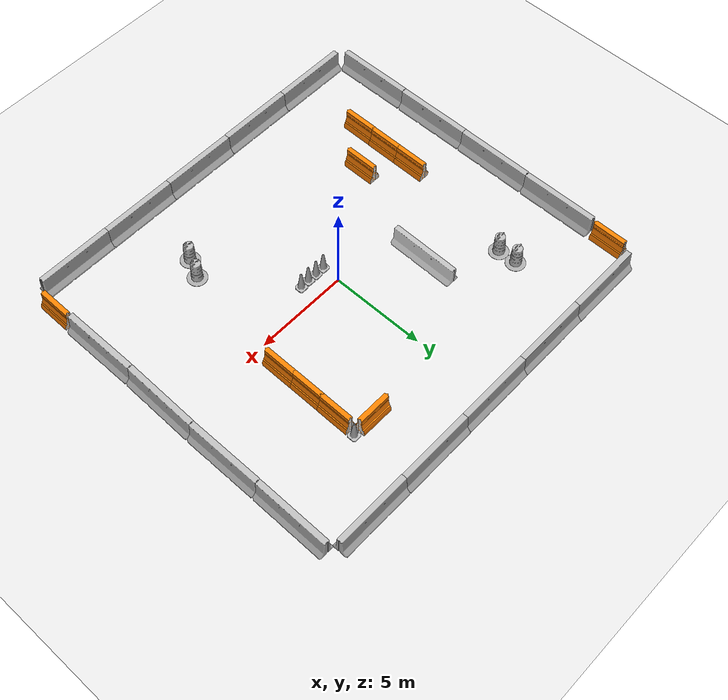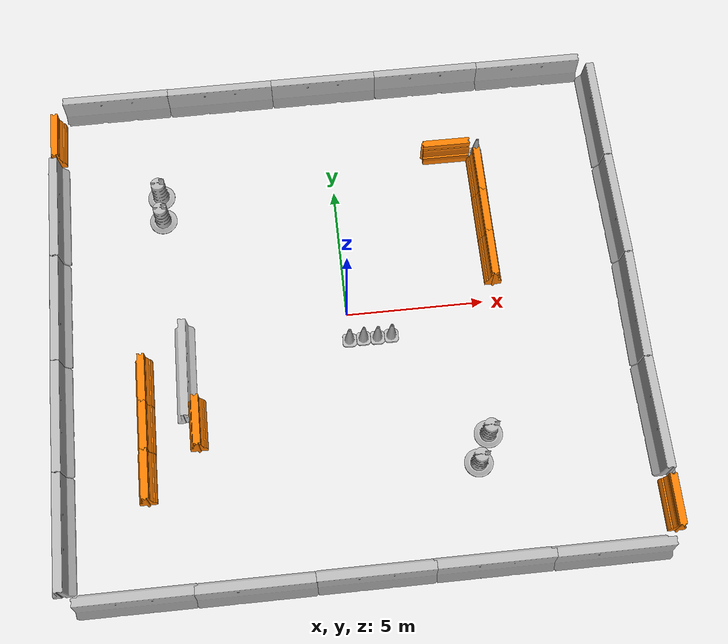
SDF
<sdf version="1.4">
 <world name="default">
  <light name="sun" type="directional">
   <pose>0 0 10 0 -0 0</pose>
   <diffuse>0.8 0.8 0.8 1</diffuse>
   <specular>0.2 0.2 0.2 1</specular>
   <attenuation>
    <range>1000</range>
    <constant>0.9</constant>
    <linear>0.01</linear>
    <quadratic>0.001</quadratic>
   </attenuation>
   <direction>-0.5 0.1 -0.9</direction>
  </light>
  <model name="ground_plane">
   <static>1</static>
   <link name="link">
    <collision name="collision">
     <geometry><plane><normal>0 0 1</normal><size>100 100</size></plane></geometry>
     <surface><friction><ode><mu>100</mu><mu2>50</mu2></ode></friction></surface>
    </collision>
    <visual name="visual">
     <cast_shadows>0</cast_shadows>
     <geometry><plane><normal>0 0 1</normal><size>100 100</size></plane></geometry>
     <material>
      <script><uri>file://media/materials/scripts/gazebo.material</uri><name>Gazebo/Grey</name></script>
     </material>
    </visual>
    <velocity_decay><linear>0</linear><angular>0</angular></velocity_decay>
   </link>
  </model>
  <physics type="ode">
   <max_step_size>0.001</max_step_size>
   <real_time_factor>1</real_time_factor>
   <real_time_update_rate>1000</real_time_update_rate>
   <gravity>0 0 -9.8</gravity>
  </physics>
  <scene><ambient>0.4 0.4 0.4 1</ambient><background>0.7 0.7 0.7 1</background><shadows>1</shadows></scene>
  <spherical_coordinates>
   <surface_model>EARTH_WGS84</surface_model>
   <latitude_deg>0</latitude_deg>
   <longitude_deg>0</longitude_deg>
   <elevation>0</elevation>
   <heading_deg>0</heading_deg>
  </spherical_coordinates>
  <model name="Construction Cone">
   <link name="link">
    <collision name="collision">
     <geometry>
      <mesh><scale>10 10 10</scale><uri>model://construction_cone/meshes/construction_cone.dae</uri></mesh>
     </geometry>
    </collision>
    <visual name="visual">
     <geometry>
      <mesh><scale>10 10 10</scale><uri>model://construction_cone/meshes/construction_cone.dae</uri></mesh>
     </geometry>
    </visual>
    <velocity_decay><linear>0</linear><angular>0</angular></velocity_decay>
    <inertial>
     <inertia><ixx>1</ixx><ixy>0</ixy><ixz>0</ixz><iyy>1</iyy><iyz>0</iyz><izz>1</izz></inertia>
     <mass>1</mass>
    </inertial>
   </link>
   <pose>1.50968 -0.981797 -8e-06 0 -1e-06 -0.018284</pose>
   <static>0</static>
  </model>
  <model name="jersey_barrier_0">
   <static>1</static>
   <link name="link">
    <visual name="visual">
     <geometry><mesh><uri>model://jersey_barrier/meshes/jersey_barrier.dae</uri></mesh></geometry>
    </visual>
    <collision name="upright">
     <pose>0 0 0.5715 0 -0 0</pose>
     <geometry><box><size>4.06542 0.3063 1.143</size></box></geometry>
    </collision>
    <collision name="base">
     <pose>0 0 0.032258 0 -0 0</pose>
     <geometry><box><size>4.06542 0.8107 0.064516</size></box></geometry>
    </collision>
    <collision name="base2">
     <pose>0 0 0.1 0 -0 0</pose>
     <geometry><box><size>4.06542 0.65 0.1</size></box></geometry>
    </collision>
    <collision name="base3">
     <pose>0 0 0.2 0 -0 0</pose>
     <geometry><box><size>4.06542 0.5 0.1</size></box></geometry>
    </collision>
    <collision name="left-angle">
     <pose>0 -0.224 0.2401 0.9 -0 0</pose>
     <geometry><box><size>4.06542 0.5 0.064516</size></box></geometry>
    </collision>
    <collision name="right-angle">
     <pose>0 0.224 0.2401 -0.9 0 0</pose>
     <geometry><box><size>4.06542 0.5 0.064516</size></box></geometry>
    </collision>
    <velocity_decay><linear>0</linear><angular>0</angular></velocity_decay>
   </link>
   <pose>-4 9.42548 0 0 -0 0</pose>
  </model>
  <model name="jersey_barrier_1">
   <static>1</static>
   <link name="link">
    <visual name="visual">
     <geometry><mesh><uri>model://jersey_barrier/meshes/jersey_barrier.dae</uri></mesh></geometry>
    </visual>
    <collision name="upright">
     <pose>0 0 0.5715 0 -0 0</pose>
     <geometry><box><size>4.06542 0.3063 1.143</size></box></geometry>
    </collision>
    <collision name="base">
     <pose>0 0 0.032258 0 -0 0</pose>
     <geometry><box><size>4.06542 0.8107 0.064516</size></box></geometry>
    </collision>
    <collision name="base2">
     <pose>0 0 0.1 0 -0 0</pose>
     <geometry><box><size>4.06542 0.65 0.1</size></box></geometry>
    </collision>
    <collision name="base3">
     <pose>0 0 0.2 0 -0 0</pose>
     <geometry><box><size>4.06542 0.5 0.1</size></box></geometry>
    </collision>
    <collision name="left-angle">
     <pose>0 -0.224 0.2401 0.9 -0 0</pose>
     <geometry><box><size>4.06542 0.5 0.064516</size></box></geometry>
    </collision>
    <collision name="right-angle">
     <pose>0 0.224 0.2401 -0.9 0 0</pose>
     <geometry><box><size>4.06542 0.5 0.064516</size></box></geometry>
    </collision>
    <velocity_decay><linear>0</linear><angular>0</angular></velocity_decay>
   </link>
   <pose>0 9.42939 0 0 -0 0</pose>
  </model>
  <model name="jersey_barrier_2">
   <static>1</static>
   <link name="link">
    <visual name="visual">
     <geometry><mesh><uri>model://jersey_barrier/meshes/jersey_barrier.dae</uri></mesh></geometry>
    </visual>
    <collision name="upright">
     <pose>0 0 0.5715 0 -0 0</pose>
     <geometry><box><size>4.06542 0.3063 1.143</size></box></geometry>
    </collision>
    <collision name="base">
     <pose>0 0 0.032258 0 -0 0</pose>
     <geometry><box><size>4.06542 0.8107 0.064516</size></box></geometry>
    </collision>
    <collision name="base2">
     <pose>0 0 0.1 0 -0 0</pose>
     <geometry><box><size>4.06542 0.65 0.1</size></box></geometry>
    </collision>
    <collision name="base3">
     <pose>0 0 0.2 0 -0 0</pose>
     <geometry><box><size>4.06542 0.5 0.1</size></box></geometry>
    </collision>
    <collision name="left-angle">
     <pose>0 -0.224 0.2401 0.9 -0 0</pose>
     <geometry><box><size>4.06542 0.5 0.064516</size></box></geometry>
    </collision>
    <collision name="right-angle">
     <pose>0 0.224 0.2401 -0.9 0 0</pose>
     <geometry><box><size>4.06542 0.5 0.064516</size></box></geometry>
    </collision>
    <velocity_decay><linear>0</linear><angular>0</angular></velocity_decay>
   </link>
   <pose>4 9.43616 0 0 -0 0</pose>
  </model>
  <model name="jersey_barrier_3">
   <static>1</static>
   <link name="link">
    <visual name="visual">
     <geometry><mesh><uri>model://jersey_barrier/meshes/jersey_barrier.dae</uri></mesh></geometry>
    </visual>
    <collision name="upright">
     <pose>0 0 0.5715 0 -0 0</pose>
     <geometry><box><size>4.06542 0.3063 1.143</size></box></geometry>
    </collision>
    <collision name="base">
     <pose>0 0 0.032258 0 -0 0</pose>
     <geometry><box><size>4.06542 0.8107 0.064516</size></box></geometry>
    </collision>
    <collision name="base2">
     <pose>0 0 0.1 0 -0 0</pose>
     <geometry><box><size>4.06542 0.65 0.1</size></box></geometry>
    </collision>
    <collision name="base3">
     <pose>0 0 0.2 0 -0 0</pose>
     <geometry><box><size>4.06542 0.5 0.1</size></box></geometry>
    </collision>
    <collision name="left-angle">
     <pose>0 -0.224 0.2401 0.9 -0 0</pose>
     <geometry><box><size>4.06542 0.5 0.064516</size></box></geometry>
    </collision>
    <collision name="right-angle">
     <pose>0 0.224 0.2401 -0.9 0 0</pose>
     <geometry><box><size>4.06542 0.5 0.064516</size></box></geometry>
    </collision>
    <velocity_decay><linear>0</linear><angular>0</angular></velocity_decay>
   </link>
   <pose>8 9.42969 0 0 -0 0</pose>
  </model>
  <model name="jersey_barrier_4">
   <static>1</static>
   <link name="link">
    <visual name="visual">
     <geometry><mesh><uri>model://jersey_barrier/meshes/jersey_barrier.dae</uri></mesh></geometry>
    </visual>
    <collision name="upright">
     <pose>0 0 0.5715 0 -0 0</pose>
     <geometry><box><size>4.06542 0.3063 1.143</size></box></geometry>
    </collision>
    <collision name="base">
     <pose>0 0 0.032258 0 -0 0</pose>
     <geometry><box><size>4.06542 0.8107 0.064516</size></box></geometry>
    </collision>
    <collision name="base2">
     <pose>0 0 0.1 0 -0 0</pose>
     <geometry><box><size>4.06542 0.65 0.1</size></box></geometry>
    </collision>
    <collision name="base3">
     <pose>0 0 0.2 0 -0 0</pose>
     <geometry><box><size>4.06542 0.5 0.1</size></box></geometry>
    </collision>
    <collision name="left-angle">
     <pose>0 -0.224 0.2401 0.9 -0 0</pose>
     <geometry><box><size>4.06542 0.5 0.064516</size></box></geometry>
    </collision>
    <collision name="right-angle">
     <pose>0 0.224 0.2401 -0.9 0 0</pose>
     <geometry><box><size>4.06542 0.5 0.064516</size></box></geometry>
    </collision>
    <velocity_decay><linear>0</linear><angular>0</angular></velocity_decay>
   </link>
   <pose>8 -9.56134 0 0 -0 0</pose>
  </model>
  <model name="jersey_barrier_5">
   <static>1</static>
   <link name="link">
    <visual name="visual">
     <geometry><mesh><uri>model://jersey_barrier/meshes/jersey_barrier.dae</uri></mesh></geometry>
    </visual>
    <collision name="upright">
     <pose>0 0 0.5715 0 -0 0</pose>
     <geometry><box><size>4.06542 0.3063 1.143</size></box></geometry>
    </collision>
    <collision name="base">
     <pose>0 0 0.032258 0 -0 0</pose>
     <geometry><box><size>4.06542 0.8107 0.064516</size></box></geometry>
    </collision>
    <collision name="base2">
     <pose>0 0 0.1 0 -0 0</pose>
     <geometry><box><size>4.06542 0.65 0.1</size></box></geometry>
    </collision>
    <collision name="base3">
     <pose>0 0 0.2 0 -0 0</pose>
     <geometry><box><size>4.06542 0.5 0.1</size></box></geometry>
    </collision>
    <collision name="left-angle">
     <pose>0 -0.224 0.2401 0.9 -0 0</pose>
     <geometry><box><size>4.06542 0.5 0.064516</size></box></geometry>
    </collision>
    <collision name="right-angle">
     <pose>0 0.224 0.2401 -0.9 0 0</pose>
     <geometry><box><size>4.06542 0.5 0.064516</size></box></geometry>
    </collision>
    <velocity_decay><linear>0</linear><angular>0</angular></velocity_decay>
   </link>
   <pose>4 -9.54883 0 0 -0 0</pose>
  </model>
  <model name="jersey_barrier_6">
   <static>1</static>
   <link name="link">
    <visual name="visual">
     <geometry><mesh><uri>model://jersey_barrier/meshes/jersey_barrier.dae</uri></mesh></geometry>
    </visual>
    <collision name="upright">
     <pose>0 0 0.5715 0 -0 0</pose>
     <geometry><box><size>4.06542 0.3063 1.143</size></box></geometry>
    </collision>
    <collision name="base">
     <pose>0 0 0.032258 0 -0 0</pose>
     <geometry><box><size>4.06542 0.8107 0.064516</size></box></geometry>
    </collision>
    <collision name="base2">
     <pose>0 0 0.1 0 -0 0</pose>
     <geometry><box><size>4.06542 0.65 0.1</size></box></geometry>
    </collision>
    <collision name="base3">
     <pose>0 0 0.2 0 -0 0</pose>
     <geometry><box><size>4.06542 0.5 0.1</size></box></geometry>
    </collision>
    <collision name="left-angle">
     <pose>0 -0.224 0.2401 0.9 -0 0</pose>
     <geometry><box><size>4.06542 0.5 0.064516</size></box></geometry>
    </collision>
    <collision name="right-angle">
     <pose>0 0.224 0.2401 -0.9 0 0</pose>
     <geometry><box><size>4.06542 0.5 0.064516</size></box></geometry>
    </collision>
    <velocity_decay><linear>0</linear><angular>0</angular></velocity_decay>
   </link>
   <pose>0 -9.55258 0 0 -0 0</pose>
  </model>
  <model name="jersey_barrier_7">
   <static>1</static>
   <link name="link">
    <visual name="visual">
     <geometry><mesh><uri>model://jersey_barrier/meshes/jersey_barrier.dae</uri></mesh></geometry>
    </visual>
    <collision name="upright">
     <pose>0 0 0.5715 0 -0 0</pose>
     <geometry><box><size>4.06542 0.3063 1.143</size></box></geometry>
    </collision>
    <collision name="base">
     <pose>0 0 0.032258 0 -0 0</pose>
     <geometry><box><size>4.06542 0.8107 0.064516</size></box></geometry>
    </collision>
    <collision name="base2">
     <pose>0 0 0.1 0 -0 0</pose>
     <geometry><box><size>4.06542 0.65 0.1</size></box></geometry>
    </collision>
    <collision name="base3">
     <pose>0 0 0.2 0 -0 0</pose>
     <geometry><box><size>4.06542 0.5 0.1</size></box></geometry>
    </collision>
    <collision name="left-angle">
     <pose>0 -0.224 0.2401 0.9 -0 0</pose>
     <geometry><box><size>4.06542 0.5 0.064516</size></box></geometry>
    </collision>
    <collision name="right-angle">
     <pose>0 0.224 0.2401 -0.9 0 0</pose>
     <geometry><box><size>4.06542 0.5 0.064516</size></box></geometry>
    </collision>
    <velocity_decay><linear>0</linear><angular>0</angular></velocity_decay>
   </link>
   <pose>-4 -9.56635 0 0 -0 0</pose>
  </model>
  <model name="jersey_barrier_8">
   <static>1</static>
   <link name="link">
    <visual name="visual">
     <geometry><mesh><uri>model://jersey_barrier/meshes/jersey_barrier.dae</uri></mesh></geometry>
    </visual>
    <collision name="upright">
     <pose>0 0 0.5715 0 -0 0</pose>
     <geometry><box><size>4.06542 0.3063 1.143</size></box></geometry>
    </collision>
    <collision name="base">
     <pose>0 0 0.032258 0 -0 0</pose>
     <geometry><box><size>4.06542 0.8107 0.064516</size></box></geometry>
    </collision>
    <collision name="base2">
     <pose>0 0 0.1 0 -0 0</pose>
     <geometry><box><size>4.06542 0.65 0.1</size></box></geometry>
    </collision>
    <collision name="base3">
     <pose>0 0 0.2 0 -0 0</pose>
     <geometry><box><size>4.06542 0.5 0.1</size></box></geometry>
    </collision>
    <collision name="left-angle">
     <pose>0 -0.224 0.2401 0.9 -0 0</pose>
     <geometry><box><size>4.06542 0.5 0.064516</size></box></geometry>
    </collision>
    <collision name="right-angle">
     <pose>0 0.224 0.2401 -0.9 0 0</pose>
     <geometry><box><size>4.06542 0.5 0.064516</size></box></geometry>
    </collision>
    <velocity_decay><linear>0</linear><angular>0</angular></velocity_decay>
   </link>
   <pose>-8 -9.55494 0 0 -0 0</pose>
  </model>
  <model name="jersey_barrier_9">
   <static>1</static>
   <link name="link">
    <visual name="visual">
     <geometry><mesh><uri>model://jersey_barrier/meshes/jersey_barrier.dae</uri></mesh></geometry>
    </visual>
    <collision name="upright">
     <pose>0 0 0.5715 0 -0 0</pose>
     <geometry><box><size>4.06542 0.3063 1.143</size></box></geometry>
    </collision>
    <collision name="base">
     <pose>0 0 0.032258 0 -0 0</pose>
     <geometry><box><size>4.06542 0.8107 0.064516</size></box></geometry>
    </collision>
    <collision name="base2">
     <pose>0 0 0.1 0 -0 0</pose>
     <geometry><box><size>4.06542 0.65 0.1</size></box></geometry>
    </collision>
    <collision name="base3">
     <pose>0 0 0.2 0 -0 0</pose>
     <geometry><box><size>4.06542 0.5 0.1</size></box></geometry>
    </collision>
    <collision name="left-angle">
     <pose>0 -0.224 0.2401 0.9 -0 0</pose>
     <geometry><box><size>4.06542 0.5 0.064516</size></box></geometry>
    </collision>
    <collision name="right-angle">
     <pose>0 0.224 0.2401 -0.9 0 0</pose>
     <geometry><box><size>4.06542 0.5 0.064516</size></box></geometry>
    </collision>
    <velocity_decay><linear>0</linear><angular>0</angular></velocity_decay>
   </link>
   <pose>-10.4428 -7.15906 0 0 0 -1.56702</pose>
  </model>
  <model name="jersey_barrier_10">
   <static>1</static>
   <link name="link">
    <visual name="visual">
     <geometry><mesh><uri>model://jersey_barrier/meshes/jersey_barrier.dae</uri></mesh></geometry>
    </visual>
    <collision name="upright">
     <pose>0 0 0.5715 0 -0 0</pose>
     <geometry><box><size>4.06542 0.3063 1.143</size></box></geometry>
    </collision>
    <collision name="base">
     <pose>0 0 0.032258 0 -0 0</pose>
     <geometry><box><size>4.06542 0.8107 0.064516</size></box></geometry>
    </collision>
    <collision name="base2">
     <pose>0 0 0.1 0 -0 0</pose>
     <geometry><box><size>4.06542 0.65 0.1</size></box></geometry>
    </collision>
    <collision name="base3">
     <pose>0 0 0.2 0 -0 0</pose>
     <geometry><box><size>4.06542 0.5 0.1</size></box></geometry>
    </collision>
    <collision name="left-angle">
     <pose>0 -0.224 0.2401 0.9 -0 0</pose>
     <geometry><box><size>4.06542 0.5 0.064516</size></box></geometry>
    </collision>
    <collision name="right-angle">
     <pose>0 0.224 0.2401 -0.9 0 0</pose>
     <geometry><box><size>4.06542 0.5 0.064516</size></box></geometry>
    </collision>
    <velocity_decay><linear>0</linear><angular>0</angular></velocity_decay>
   </link>
   <pose>-7.99162 9.43321 0 0 -0 0</pose>
  </model>
  <model name="jersey_barrier_11">
   <static>1</static>
   <link name="link">
    <visual name="visual">
     <geometry><mesh><uri>model://jersey_barrier/meshes/jersey_barrier.dae</uri></mesh></geometry>
    </visual>
    <collision name="upright">
     <pose>0 0 0.5715 0 -0 0</pose>
     <geometry><box><size>4.06542 0.3063 1.143</size></box></geometry>
    </collision>
    <collision name="base">
     <pose>0 0 0.032258 0 -0 0</pose>
     <geometry><box><size>4.06542 0.8107 0.064516</size></box></geometry>
    </collision>
    <collision name="base2">
     <pose>0 0 0.1 0 -0 0</pose>
     <geometry><box><size>4.06542 0.65 0.1</size></box></geometry>
    </collision>
    <collision name="base3">
     <pose>0 0 0.2 0 -0 0</pose>
     <geometry><box><size>4.06542 0.5 0.1</size></box></geometry>
    </collision>
    <collision name="left-angle">
     <pose>0 -0.224 0.2401 0.9 -0 0</pose>
     <geometry><box><size>4.06542 0.5 0.064516</size></box></geometry>
    </collision>
    <collision name="right-angle">
     <pose>0 0.224 0.2401 -0.9 0 0</pose>
     <geometry><box><size>4.06542 0.5 0.064516</size></box></geometry>
    </collision>
    <velocity_decay><linear>0</linear><angular>0</angular></velocity_decay>
   </link>
   <pose>-10.4431 -3.11056 0 0 0 -1.56763</pose>
  </model>
  <model name="jersey_barrier_12">
   <static>1</static>
   <link name="link">
    <visual name="visual">
     <geometry><mesh><uri>model://jersey_barrier/meshes/jersey_barrier.dae</uri></mesh></geometry>
    </visual>
    <collision name="upright">
     <pose>0 0 0.5715 0 -0 0</pose>
     <geometry><box><size>4.06542 0.3063 1.143</size></box></geometry>
    </collision>
    <collision name="base">
     <pose>0 0 0.032258 0 -0 0</pose>
     <geometry><box><size>4.06542 0.8107 0.064516</size></box></geometry>
    </collision>
    <collision name="base2">
     <pose>0 0 0.1 0 -0 0</pose>
     <geometry><box><size>4.06542 0.65 0.1</size></box></geometry>
    </collision>
    <collision name="base3">
     <pose>0 0 0.2 0 -0 0</pose>
     <geometry><box><size>4.06542 0.5 0.1</size></box></geometry>
    </collision>
    <collision name="left-angle">
     <pose>0 -0.224 0.2401 0.9 -0 0</pose>
     <geometry><box><size>4.06542 0.5 0.064516</size></box></geometry>
    </collision>
    <collision name="right-angle">
     <pose>0 0.224 0.2401 -0.9 0 0</pose>
     <geometry><box><size>4.06542 0.5 0.064516</size></box></geometry>
    </collision>
    <velocity_decay><linear>0</linear><angular>0</angular></velocity_decay>
   </link>
   <pose>-6.52367 0.055854 -5.05776 0 0 -1.5877</pose>
  </model>
  <model name="jersey_barrier_13">
   <static>1</static>
   <link name="link">
    <visual name="visual">
     <geometry><mesh><uri>model://jersey_barrier/meshes/jersey_barrier.dae</uri></mesh></geometry>
    </visual>
    <collision name="upright">
     <pose>0 0 0.5715 0 -0 0</pose>
     <geometry><box><size>4.06542 0.3063 1.143</size></box></geometry>
    </collision>
    <collision name="base">
     <pose>0 0 0.032258 0 -0 0</pose>
     <geometry><box><size>4.06542 0.8107 0.064516</size></box></geometry>
    </collision>
    <collision name="base2">
     <pose>0 0 0.1 0 -0 0</pose>
     <geometry><box><size>4.06542 0.65 0.1</size></box></geometry>
    </collision>
    <collision name="base3">
     <pose>0 0 0.2 0 -0 0</pose>
     <geometry><box><size>4.06542 0.5 0.1</size></box></geometry>
    </collision>
    <collision name="left-angle">
     <pose>0 -0.224 0.2401 0.9 -0 0</pose>
     <geometry><box><size>4.06542 0.5 0.064516</size></box></geometry>
    </collision>
    <collision name="right-angle">
     <pose>0 0.224 0.2401 -0.9 0 0</pose>
     <geometry><box><size>4.06542 0.5 0.064516</size></box></geometry>
    </collision>
    <velocity_decay><linear>0</linear><angular>0</angular></velocity_decay>
   </link>
   <pose>-10.4318 0.927659 -0 0 -0 1.56894</pose>
  </model>
  <model name="jersey_barrier_14">
   <static>1</static>
   <link name="link">
    <visual name="visual">
     <geometry><mesh><uri>model://jersey_barrier/meshes/jersey_barrier.dae</uri></mesh></geometry>
    </visual>
    <collision name="upright">
     <pose>0 0 0.5715 0 -0 0</pose>
     <geometry><box><size>4.06542 0.3063 1.143</size></box></geometry>
    </collision>
    <collision name="base">
     <pose>0 0 0.032258 0 -0 0</pose>
     <geometry><box><size>4.06542 0.8107 0.064516</size></box></geometry>
    </collision>
    <collision name="base2">
     <pose>0 0 0.1 0 -0 0</pose>
     <geometry><box><size>4.06542 0.65 0.1</size></box></geometry>
    </collision>
    <collision name="base3">
     <pose>0 0 0.2 0 -0 0</pose>
     <geometry><box><size>4.06542 0.5 0.1</size></box></geometry>
    </collision>
    <collision name="left-angle">
     <pose>0 -0.224 0.2401 0.9 -0 0</pose>
     <geometry><box><size>4.06542 0.5 0.064516</size></box></geometry>
    </collision>
    <collision name="right-angle">
     <pose>0 0.224 0.2401 -0.9 0 0</pose>
     <geometry><box><size>4.06542 0.5 0.064516</size></box></geometry>
    </collision>
    <velocity_decay><linear>0</linear><angular>0</angular></velocity_decay>
   </link>
   <pose>-10.4181 4.99822 0 0 0 -1.5688</pose>
  </model>
  <model name="drc_practice_organge_jersey_barrier">
   <static>1</static>
   <link name="link">
    <visual name="visual">
     <geometry>
      <mesh><uri>model://drc_practice_orange_jersey_barrier/meshes/jersey_barrier.dae</uri></mesh>
     </geometry>
    </visual>
    <collision name="collision">
     <geometry>
      <mesh><uri>model://drc_practice_orange_jersey_barrier/meshes/jersey_barrier.dae</uri></mesh>
     </geometry>
    </collision>
    <velocity_decay><linear>0</linear><angular>0</angular></velocity_decay>
   </link>
   <pose>-10.3757 8.08812 0 0 -0 0</pose>
  </model>
  <model name="jersey_barrier_19">
   <static>1</static>
   <link name="link">
    <visual name="visual">
     <geometry><mesh><uri>model://jersey_barrier/meshes/jersey_barrier.dae</uri></mesh></geometry>
    </visual>
    <collision name="upright">
     <pose>0 0 0.5715 0 -0 0</pose>
     <geometry><box><size>4.06542 0.3063 1.143</size></box></geometry>
    </collision>
    <collision name="base">
     <pose>0 0 0.032258 0 -0 0</pose>
     <geometry><box><size>4.06542 0.8107 0.064516</size></box></geometry>
    </collision>
    <collision name="base2">
     <pose>0 0 0.1 0 -0 0</pose>
     <geometry><box><size>4.06542 0.65 0.1</size></box></geometry>
    </collision>
    <collision name="base3">
     <pose>0 0 0.2 0 -0 0</pose>
     <geometry><box><size>4.06542 0.5 0.1</size></box></geometry>
    </collision>
    <collision name="left-angle">
     <pose>0 -0.224 0.2401 0.9 -0 0</pose>
     <geometry><box><size>4.06542 0.5 0.064516</size></box></geometry>
    </collision>
    <collision name="right-angle">
     <pose>0 0.224 0.2401 -0.9 0 0</pose>
     <geometry><box><size>4.06542 0.5 0.064516</size></box></geometry>
    </collision>
    <velocity_decay><linear>0</linear><angular>0</angular></velocity_decay>
   </link>
   <pose>10.4074 7.08724 0 0 -0 1.56688</pose>
  </model>
  <model name="jersey_barrier_20">
   <static>1</static>
   <link name="link">
    <visual name="visual">
     <geometry><mesh><uri>model://jersey_barrier/meshes/jersey_barrier.dae</uri></mesh></geometry>
    </visual>
    <collision name="upright">
     <pose>0 0 0.5715 0 -0 0</pose>
     <geometry><box><size>4.06542 0.3063 1.143</size></box></geometry>
    </collision>
    <collision name="base">
     <pose>0 0 0.032258 0 -0 0</pose>
     <geometry><box><size>4.06542 0.8107 0.064516</size></box></geometry>
    </collision>
    <collision name="base2">
     <pose>0 0 0.1 0 -0 0</pose>
     <geometry><box><size>4.06542 0.65 0.1</size></box></geometry>
    </collision>
    <collision name="base3">
     <pose>0 0 0.2 0 -0 0</pose>
     <geometry><box><size>4.06542 0.5 0.1</size></box></geometry>
    </collision>
    <collision name="left-angle">
     <pose>0 -0.224 0.2401 0.9 -0 0</pose>
     <geometry><box><size>4.06542 0.5 0.064516</size></box></geometry>
    </collision>
    <collision name="right-angle">
     <pose>0 0.224 0.2401 -0.9 0 0</pose>
     <geometry><box><size>4.06542 0.5 0.064516</size></box></geometry>
    </collision>
    <velocity_decay><linear>0</linear><angular>0</angular></velocity_decay>
   </link>
   <pose>10.3648 -1.03364 0 0 0 -1.58918</pose>
  </model>
  <model name="jersey_barrier_21">
   <static>1</static>
   <link name="link">
    <visual name="visual">
     <geometry><mesh><uri>model://jersey_barrier/meshes/jersey_barrier.dae</uri></mesh></geometry>
    </visual>
    <collision name="upright">
     <pose>0 0 0.5715 0 -0 0</pose>
     <geometry><box><size>4.06542 0.3063 1.143</size></box></geometry>
    </collision>
    <collision name="base">
     <pose>0 0 0.032258 0 -0 0</pose>
     <geometry><box><size>4.06542 0.8107 0.064516</size></box></geometry>
    </collision>
    <collision name="base2">
     <pose>0 0 0.1 0 -0 0</pose>
     <geometry><box><size>4.06542 0.65 0.1</size></box></geometry>
    </collision>
    <collision name="base3">
     <pose>0 0 0.2 0 -0 0</pose>
     <geometry><box><size>4.06542 0.5 0.1</size></box></geometry>
    </collision>
    <collision name="left-angle">
     <pose>0 -0.224 0.2401 0.9 -0 0</pose>
     <geometry><box><size>4.06542 0.5 0.064516</size></box></geometry>
    </collision>
    <collision name="right-angle">
     <pose>0 0.224 0.2401 -0.9 0 0</pose>
     <geometry><box><size>4.06542 0.5 0.064516</size></box></geometry>
    </collision>
    <velocity_decay><linear>0</linear><angular>0</angular></velocity_decay>
   </link>
   <pose>10.3333 -5.08785 0 0 -0 1.57547</pose>
  </model>
  <model name="jersey_barrier_22">
   <static>1</static>
   <link name="link">
    <visual name="visual">
     <geometry><mesh><uri>model://jersey_barrier/meshes/jersey_barrier.dae</uri></mesh></geometry>
    </visual>
    <collision name="upright">
     <pose>0 0 0.5715 0 -0 0</pose>
     <geometry><box><size>4.06542 0.3063 1.143</size></box></geometry>
    </collision>
    <collision name="base">
     <pose>0 0 0.032258 0 -0 0</pose>
     <geometry><box><size>4.06542 0.8107 0.064516</size></box></geometry>
    </collision>
    <collision name="base2">
     <pose>0 0 0.1 0 -0 0</pose>
     <geometry><box><size>4.06542 0.65 0.1</size></box></geometry>
    </collision>
    <collision name="base3">
     <pose>0 0 0.2 0 -0 0</pose>
     <geometry><box><size>4.06542 0.5 0.1</size></box></geometry>
    </collision>
    <collision name="left-angle">
     <pose>0 -0.224 0.2401 0.9 -0 0</pose>
     <geometry><box><size>4.06542 0.5 0.064516</size></box></geometry>
    </collision>
    <collision name="right-angle">
     <pose>0 0.224 0.2401 -0.9 0 0</pose>
     <geometry><box><size>4.06542 0.5 0.064516</size></box></geometry>
    </collision>
    <velocity_decay><linear>0</linear><angular>0</angular></velocity_decay>
   </link>
   <pose>10.4009 3.02604 0 0 0 -1.56631</pose>
  </model>
  <model name="drc_practice_organge_jersey_barrier_0">
   <static>1</static>
   <link name="link">
    <visual name="visual">
     <geometry>
      <mesh><uri>model://drc_practice_orange_jersey_barrier/meshes/jersey_barrier.dae</uri></mesh>
     </geometry>
    </visual>
    <collision name="collision">
     <geometry>
      <mesh><uri>model://drc_practice_orange_jersey_barrier/meshes/jersey_barrier.dae</uri></mesh>
     </geometry>
    </collision>
    <velocity_decay><linear>0</linear><angular>0</angular></velocity_decay>
   </link>
   <pose>10.37 -8.15058 0 0 -0 0</pose>
  </model>
  <model name="Construction Cone_0">
   <link name="link">
    <collision name="collision">
     <geometry>
      <mesh><scale>10 10 10</scale><uri>model://construction_cone/meshes/construction_cone.dae</uri></mesh>
     </geometry>
    </collision>
    <visual name="visual">
     <geometry>
      <mesh><scale>10 10 10</scale><uri>model://construction_cone/meshes/construction_cone.dae</uri></mesh>
     </geometry>
    </visual>
    <velocity_decay><linear>0</linear><angular>0</angular></velocity_decay>
    <inertial>
     <inertia><ixx>1</ixx><ixy>0</ixy><ixz>0</ixz><iyy>1</iyy><iyz>0</iyz><izz>1</izz></inertia>
     <mass>1</mass>
    </inertial>
   </link>
   <pose>1.00336 -1.00605 0 1e-06 1e-06 -0.021748</pose>
   <static>0</static>
  </model>
  <model name="Construction Cone_1">
   <link name="link">
    <collision name="collision">
     <geometry>
      <mesh><scale>10 10 10</scale><uri>model://construction_cone/meshes/construction_cone.dae</uri></mesh>
     </geometry>
    </collision>
    <visual name="visual">
     <geometry>
      <mesh><scale>10 10 10</scale><uri>model://construction_cone/meshes/construction_cone.dae</uri></mesh>
     </geometry>
    </visual>
    <velocity_decay><linear>0</linear><angular>0</angular></velocity_decay>
    <inertial>
     <inertia><ixx>1</ixx><ixy>0</ixy><ixz>0</ixz><iyy>1</iyy><iyz>0</iyz><izz>1</izz></inertia>
     <mass>1</mass>
    </inertial>
   </link>
   <pose>0.495596 -0.993038 -9e-06 2e-06 -1.03398e-25 0.00039</pose>
   <static>0</static>
  </model>
  <model name="Construction Cone_2">
   <link name="link">
    <collision name="collision">
     <geometry>
      <mesh><scale>10 10 10</scale><uri>model://construction_cone/meshes/construction_cone.dae</uri></mesh>
     </geometry>
    </collision>
    <visual name="visual">
     <geometry>
      <mesh><scale>10 10 10</scale><uri>model://construction_cone/meshes/construction_cone.dae</uri></mesh>
     </geometry>
    </visual>
    <velocity_decay><linear>0</linear><angular>0</angular></velocity_decay>
    <inertial>
     <inertia><ixx>1</ixx><ixy>0</ixy><ixz>0</ixz><iyy>1</iyy><iyz>0</iyz><izz>1</izz></inertia>
     <mass>1</mass>
    </inertial>
   </link>
   <pose>-0.015776 -1.00933 0 0 1e-06 -0.025537</pose>
   <static>0</static>
  </model>
  <model name="drc_practice_organge_jersey_barrier_1">
   <static>1</static>
   <link name="link">
    <visual name="visual">
     <geometry>
      <mesh><uri>model://drc_practice_orange_jersey_barrier/meshes/jersey_barrier.dae</uri></mesh>
     </geometry>
    </visual>
    <collision name="collision">
     <geometry>
      <mesh><uri>model://drc_practice_orange_jersey_barrier/meshes/jersey_barrier.dae</uri></mesh>
     </geometry>
    </collision>
    <velocity_decay><linear>0</linear><angular>0</angular></velocity_decay>
   </link>
   <pose>5.50476 5 0 0 -0 0</pose>
  </model>
  <model name="drc_practice_organge_jersey_barrier_2">
   <static>1</static>
   <link name="link">
    <visual name="visual">
     <geometry>
      <mesh><uri>model://drc_practice_orange_jersey_barrier/meshes/jersey_barrier.dae</uri></mesh>
     </geometry>
    </visual>
    <collision name="collision">
     <geometry>
      <mesh><uri>model://drc_practice_orange_jersey_barrier/meshes/jersey_barrier.dae</uri></mesh>
     </geometry>
    </collision>
    <velocity_decay><linear>0</linear><angular>0</angular></velocity_decay>
   </link>
   <pose>5.49001 3.29191 0 0 -0 0</pose>
  </model>
  <model name="drc_practice_organge_jersey_barrier_3">
   <static>1</static>
   <link name="link">
    <visual name="visual">
     <geometry>
      <mesh><uri>model://drc_practice_orange_jersey_barrier/meshes/jersey_barrier.dae</uri></mesh>
     </geometry>
    </visual>
    <collision name="collision">
     <geometry>
      <mesh><uri>model://drc_practice_orange_jersey_barrier/meshes/jersey_barrier.dae</uri></mesh>
     </geometry>
    </collision>
    <velocity_decay><linear>0</linear><angular>0</angular></velocity_decay>
   </link>
   <pose>5.48469 1.56222 0 0 -0 0</pose>
  </model>
  <model name="drc_practice_organge_jersey_barrier_4">
   <static>1</static>
   <link name="link">
    <visual name="visual">
     <geometry>
      <mesh><uri>model://drc_practice_orange_jersey_barrier/meshes/jersey_barrier.dae</uri></mesh>
     </geometry>
    </visual>
    <collision name="collision">
     <geometry>
      <mesh><uri>model://drc_practice_orange_jersey_barrier/meshes/jersey_barrier.dae</uri></mesh>
     </geometry>
    </collision>
    <velocity_decay><linear>0</linear><angular>0</angular></velocity_decay>
   </link>
   <pose>4.41703 6.21861 0 0 0 -1.56756</pose>
  </model>
  <model name="Construction Cone_3">
   <link name="link">
    <collision name="collision">
     <geometry>
      <mesh><scale>10 10 10</scale><uri>model://construction_cone/meshes/construction_cone.dae</uri></mesh>
     </geometry>
    </collision>
    <visual name="visual">
     <geometry>
      <mesh><scale>10 10 10</scale><uri>model://construction_cone/meshes/construction_cone.dae</uri></mesh>
     </geometry>
    </visual>
    <velocity_decay><linear>0</linear><angular>0</angular></velocity_decay>
    <inertial>
     <inertia><ixx>1</ixx><ixy>0</ixy><ixz>0</ixz><iyy>1</iyy><iyz>0</iyz><izz>1</izz></inertia>
     <mass>1</mass>
    </inertial>
   </link>
   <pose>5.59491 6.18168 -0 -1e-06 3.30872e-24 0.015367</pose>
   <static>0</static>
  </model>
  <model name="drc_practice_organge_jersey_barrier_5">
   <static>1</static>
   <link name="link">
    <visual name="visual">
     <geometry>
      <mesh><uri>model://drc_practice_orange_jersey_barrier/meshes/jersey_barrier.dae</uri></mesh>
     </geometry>
    </visual>
    <collision name="collision">
     <geometry>
      <mesh><uri>model://drc_practice_orange_jersey_barrier/meshes/jersey_barrier.dae</uri></mesh>
     </geometry>
    </collision>
    <velocity_decay><linear>0</linear><angular>0</angular></velocity_decay>
   </link>
   <pose>-7.49646 -5.43921 0 0 -0 0</pose>
  </model>
  <model name="drc_practice_organge_jersey_barrier_6">
   <static>1</static>
   <link name="link">
    <visual name="visual">
     <geometry>
      <mesh><uri>model://drc_practice_orange_jersey_barrier/meshes/jersey_barrier.dae</uri></mesh>
     </geometry>
    </visual>
    <collision name="collision">
     <geometry>
      <mesh><uri>model://drc_practice_orange_jersey_barrier/meshes/jersey_barrier.dae</uri></mesh>
     </geometry>
    </collision>
    <velocity_decay><linear>0</linear><angular>0</angular></velocity_decay>
   </link>
   <pose>-7.47479 -3.71255 0 0 -0 0</pose>
  </model>
  <model name="drc_practice_organge_jersey_barrier_7">
   <static>1</static>
   <link name="link">
    <visual name="visual">
     <geometry>
      <mesh><uri>model://drc_practice_orange_jersey_barrier/meshes/jersey_barrier.dae</uri></mesh>
     </geometry>
    </visual>
    <collision name="collision">
     <geometry>
      <mesh><uri>model://drc_practice_orange_jersey_barrier/meshes/jersey_barrier.dae</uri></mesh>
     </geometry>
    </collision>
    <velocity_decay><linear>0</linear><angular>0</angular></velocity_decay>
   </link>
   <pose>-7.46342 -2 0 0 -0 0</pose>
  </model>
  <model name="drc_practice_organge_jersey_barrier_8">
   <static>1</static>
   <link name="link">
    <visual name="visual">
     <geometry>
      <mesh><uri>model://drc_practice_orange_jersey_barrier/meshes/jersey_barrier.dae</uri></mesh>
     </geometry>
    </visual>
    <collision name="collision">
     <geometry>
      <mesh><uri>model://drc_practice_orange_jersey_barrier/meshes/jersey_barrier.dae</uri></mesh>
     </geometry>
    </collision>
    <velocity_decay><linear>0</linear><angular>0</angular></velocity_decay>
   </link>
   <pose>-5.6526 -3.69771 0 0 -0 0</pose>
  </model>
  <model name="Construction Barrel_0">
   <link name="link">
    <inertial>
     <pose>0 0 0.4 0 -0 0</pose>
     <mass>500</mass>
     <inertia><ixx>51.2096</ixx><iyy>51.2096</iyy><izz>25</izz><ixy>0</ixy><ixz>0</ixz><iyz>0</iyz></inertia>
    </inertial>
    <collision name="collision">
     <geometry><mesh><uri>model://construction_barrel/meshes/construction_barrel.dae</uri></mesh></geometry>
    </collision>
    <visual name="visual">
     <geometry><mesh><uri>model://construction_barrel/meshes/construction_barrel.dae</uri></mesh></geometry>
    </visual>
    <velocity_decay><linear>0</linear><angular>0</angular></velocity_decay>
   </link>
   <pose>-6.54447 5.4918 -3.2e-05 4.1e-05 -2e-06 -0.003689</pose>
   <static>0</static>
  </model>
  <model name="Construction Barrel_1">
   <link name="link">
    <inertial>
     <pose>0 0 0.4 0 -0 0</pose>
     <mass>500</mass>
     <inertia><ixx>51.2096</ixx><iyy>51.2096</iyy><izz>25</izz><ixy>0</ixy><ixz>0</ixz><iyz>0</iyz></inertia>
    </inertial>
    <collision name="collision">
     <geometry><mesh><uri>model://construction_barrel/meshes/construction_barrel.dae</uri></mesh></geometry>
    </collision>
    <visual name="visual">
     <geometry><mesh><uri>model://construction_barrel/meshes/construction_barrel.dae</uri></mesh></geometry>
    </visual>
    <velocity_decay><linear>0</linear><angular>0</angular></velocity_decay>
   </link>
   <pose>-6.51397 4.48586 0.011547 0.022645 0.002982 -0.008252</pose>
   <static>0</static>
  </model>
  <model name="Construction Barrel_2">
   <link name="link">
    <inertial>
     <pose>0 0 0.4 0 -0 0</pose>
     <mass>500</mass>
     <inertia><ixx>51.2096</ixx><iyy>51.2096</iyy><izz>25</izz><ixy>0</ixy><ixz>0</ixz><iyz>0</iyz></inertia>
    </inertial>
    <collision name="collision">
     <geometry><mesh><uri>model://construction_barrel/meshes/construction_barrel.dae</uri></mesh></geometry>
    </collision>
    <visual name="visual">
     <geometry><mesh><uri>model://construction_barrel/meshes/construction_barrel.dae</uri></mesh></geometry>
    </visual>
    <velocity_decay><linear>0</linear><angular>0</angular></velocity_decay>
   </link>
   <pose>4.47968 -4.99973 1e-06 -1e-06 -2e-06 -0.000488</pose>
   <static>0</static>
  </model>
  <model name="Construction Barrel_3">
   <link name="link">
    <inertial>
     <pose>0 0 0.4 0 -0 0</pose>
     <mass>500</mass>
     <inertia><ixx>51.2096</ixx><iyy>51.2096</iyy><izz>25</izz><ixy>0</ixy><ixz>0</ixz><iyz>0</iyz></inertia>
    </inertial>
    <collision name="collision">
     <geometry><mesh><uri>model://construction_barrel/meshes/construction_barrel.dae</uri></mesh></geometry>
    </collision>
    <visual name="visual">
     <geometry><mesh><uri>model://construction_barrel/meshes/construction_barrel.dae</uri></mesh></geometry>
    </visual>
    <velocity_decay><linear>0</linear><angular>0</angular></velocity_decay>
   </link>
   <pose>4 -5.99997 -0 0 -0 -6.4e-05</pose>
   <static>0</static>
  </model>
 </world>
</sdf>
